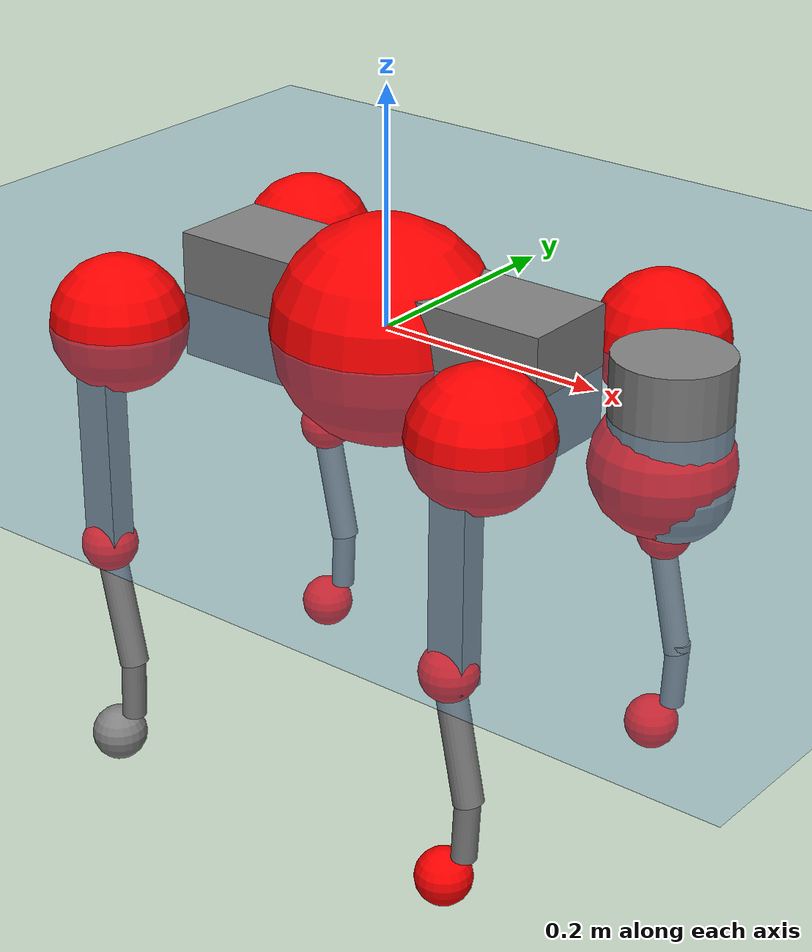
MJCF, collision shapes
<mujoco model="go2">
  <compiler angle="radian" assetdir="assets" balanceinertia="true" inertiafromgeom="false"/>

  <option timestep="0.005" density="1.2" viscosity="2e-05"/>

  <size nkey="1"/>

  <visual>
    <quality shadowsize="8192"/>
    <map shadowclip="0.5"/>
  </visual>

  <default>
    <default class="/">
      <geom contype="0" conaffinity="0" group="1" solref="-1000 -80"/>
      <site size="0.01 0.005 0.005" group="5"/>
      <general forcelimited="true" biastype="affine" gainprm="20" biasprm="0 -20 -0.5"/>
      <default class="go2">
        <joint armature="0.01" damping="0.01" frictionloss="0.2"/>
        <geom condim="1" margin="0.001"/>
        <default class="visual">
          <geom type="mesh" group="2"/>
        </default>
        <default class="collision">
          <geom group="3"/>
          <default class="foot">
            <geom size="0.022 0 0" condim="6" priority="1" friction="0.8 0.02 0.01" solimp="0.015 1 0.022"/>
          </default>
        </default>
        <default class="reward_collision_sphere">
          <geom group="5" rgba="1 0 0 1"/>
        </default>
      </default>
    </default>
  </default>

  <asset>
    <texture type="skybox" colorspace="auto" name="//unnamed_texture_0" builtin="gradient" rgb1="0.95 0.95 0.95" rgb2="0.95 0.95 0.95" width="100" height="600"/>
    <texture type="2d" colorspace="auto" name="texplane" builtin="checker" rgb1="0.345 0.575 0.748" rgb2="0.345 0.575 0.748" markrgb="1 1 1" width="512" height="512"/>
    <material name="MatPlane" class="/" texture="texplane" texuniform="true" texrepeat="2 2" specular="0.9"/>
    <material name="metal" class="/" rgba="0.9 0.95 0.95 1"/>
    <material name="black" class="/" rgba="0 0 0 1"/>
    <material name="white" class="/"/>
    <material name="gray" class="/" rgba="0.671705 0.692426 0.77427 1"/>
    <mesh name="base_0" class="/" file="base_0.obj"/>
    <mesh name="base_1" class="/" file="base_1.obj"/>
    <mesh name="base_2" class="/" file="base_2.obj"/>
    <mesh name="base_3" class="/" file="base_3.obj"/>
    <mesh name="base_4" class="/" file="base_4.obj"/>
    <mesh name="hip_0" class="/" file="hip_0.obj"/>
    <mesh name="hip_1" class="/" file="hip_1.obj"/>
    <mesh name="thigh_0" class="/" file="thigh_0.obj"/>
    <mesh name="thigh_1" class="/" file="thigh_1.obj"/>
    <mesh name="thigh_mirror_0" class="/" file="thigh_mirror_0.obj"/>
    <mesh name="thigh_mirror_1" class="/" file="thigh_mirror_1.obj"/>
    <mesh name="calf_0" class="/" file="calf_0.obj"/>
    <mesh name="calf_1" class="/" file="calf_1.obj"/>
    <mesh name="calf_mirror_0" class="/" file="calf_mirror_0.obj"/>
    <mesh name="calf_mirror_1" class="/" file="calf_mirror_1.obj"/>
    <mesh name="foot" class="/" file="foot.obj"/>
  </asset>

  <worldbody>
    <geom name="floor" class="/" size="100 100 0.125" type="plane" group="0" material="MatPlane"/>
    <light name="toplight_shadow" class="/" pos="0 0 5" dir="0.0990148 0.0990148 -0.990148" type="directional" ambient="0.04 0.04 0.04" diffuse="0.55 0.55 0.55" specular="0.12 0.12 0.12"/>
    <light name="toplight_fill" class="/" pos="0 0 5" dir="0.0990148 0.0990148 -0.990148" type="directional" castshadow="false" ambient="0.04 0.04 0.04" diffuse="0.3 0.3 0.3" specular="0.08 0.08 0.08"/>
    <body name="trunk" childclass="go2" pos="-0.000528228 -0.00029306 -0.00268144" quat="0.999999 0.000869258 0.00103298 6.28542e-05">
      <inertial pos="0.0188961 0.00250937 -0.00484762" quat="-0.0115705 0.714079 0.00582972 0.699946" mass="5.96854" diaginertia="0.0832895 0.117972 0.0132508"/>
      <joint name="//unnamed_joint_0" type="free" armature="0" damping="0" frictionloss="0"/>
      <geom name="//unnamed_geom_1" class="visual" material="black" mesh="base_0"/>
      <geom name="//unnamed_geom_2" class="visual" material="black" mesh="base_1"/>
      <geom name="//unnamed_geom_3" class="visual" material="black" mesh="base_2"/>
      <geom name="//unnamed_geom_4" class="visual" material="white" mesh="base_3"/>
      <geom name="//unnamed_geom_5" class="visual" material="gray" mesh="base_4"/>
      <geom name="trunk_1" class="collision" size="0.178701 0.044414 0.0541518" type="box"/>
      <geom name="trunk_2" class="collision" size="0.0475016 0.0427514" pos="0.269029 0 0.00877822" type="cylinder"/>
      <geom name="trunk_3" class="collision" size="0.0446515" pos="0.276581 0 -0.0526693"/>
      <geom name="//unnamed_geom_9" class="reward_collision_sphere" size="0.0950032"/>
      <geom name="//unnamed_geom_10" class="reward_collision_sphere" size="0.0570019" pos="0.26431 0 -0.039502"/>
      <site name="imu" pos="-0.0292261 0.00591375 0.0256808" size="0.00950032"/>
      <camera name="track" pos="0 -2.05662 0" quat="0.707107 0.707107 0 0" mode="trackcom"/>
      <camera name="ego_camera" pos="0.294516 0 0.039502" quat="-0.5 -0.5 0.5 0.5"/>
      <body name="FL_hip" pos="0.183016 0.0489811 0.00118567" quat="1 -7.6671e-07 -2.37645e-05 -9.38839e-05">
        <inertial pos="-0.00764274 0.00257218 -0.00243405" quat="0.507896 0.497388 0.497852 0.49678" mass="0.571819" diaginertia="0.000670573 0.000683592 0.000246999"/>
        <joint name="FL_hip_joint" pos="0 0 0" axis="0.999973 -0.00577783 -0.00450893" range="-1.04409 1.06655" armature="0.0095016" damping="0" frictionloss="0.197695"/>
        <geom name="//unnamed_geom_11" class="visual" material="metal" mesh="hip_0"/>
        <geom name="//unnamed_geom_12" class="visual" material="gray" mesh="hip_1"/>
        <geom name="//unnamed_geom_13" class="collision" size="0.0437015 0.0190006" pos="0 0.082265 0" quat="0.707107 0.707107 0 0" type="cylinder"/>
        <geom name="//unnamed_geom_14" class="reward_collision_sphere" size="0.0570019" pos="0 0.0719819 0"/>
        <body name="FL_thigh" pos="-0.00328506 0.0985813 0.00225735" quat="1 -1.73787e-05 5.10409e-06 -1.23531e-05">
          <inertial pos="-0.00360897 -0.022907 -0.0293028" quat="0.830166 0.0864023 -0.0169349 0.550519" mass="0.942927" diaginertia="0.00425756 0.00649072 0.000429865"/>
          <joint name="FL_thigh_joint" pos="0 0 0" axis="0.00153798 0.999995 -0.0026259" stiffness="0.00903381" range="-1.58783 3.49" armature="0.00862909" damping="0.0161055" frictionloss="0.190051"/>
          <geom name="//unnamed_geom_15" class="visual" material="metal" mesh="thigh_0"/>
          <geom name="//unnamed_geom_16" class="visual" material="gray" mesh="thigh_1"/>
          <geom name="//unnamed_geom_17" class="collision" size="0.101178 0.0116379 0.0161505" pos="0 0 -0.093488" quat="0.707107 0 0.707107 0" type="box"/>
          <body name="FL_calf" pos="0.000231286 0.000269957 -0.1875" quat="1 -8.58391e-05 -7.31235e-05 0.000114378">
            <inertial pos="0.00344281 -0.00328245 -0.124063" quat="0.710806 0.00275295 -0.00227734 0.703379" mass="0.205265" diaginertia="0.00107175 0.00166779 2.75932e-05"/>
            <joint name="FL_calf_joint" pos="0 0 0" axis="-0.00771909 0.999957 -0.00508978" stiffness="0.000592062" range="-2.77471 -0.81049" armature="0.00987439" damping="0.00468646" frictionloss="0.215254"/>
            <geom name="//unnamed_geom_18" class="visual" material="gray" mesh="calf_0"/>
            <geom name="//unnamed_geom_19" class="visual" material="black" mesh="calf_1"/>
            <geom name="FL_calf0" class="collision" size="0.0114004 0.0570019" pos="0.0075517 0 -0.0526693" quat="0.994493 0 -0.104807 0" type="cylinder"/>
            <geom name="//unnamed_geom_21" class="collision" size="0.0104504 0.030876" pos="0.0188793 0 -0.129918" quat="0.999688 0 0.0249974 0" type="cylinder"/>
            <geom name="//unnamed_geom_22" class="visual" pos="0 0 -0.186976" quat="1 0 0 0" material="black" mesh="foot"/>
            <geom name="FL_foot" class="foot" size="0.0159187" pos="-0.00188793 0 -0.186976"/>
            <geom name="//unnamed_geom_24" class="reward_collision_sphere" size="0.0237508"/>
            <geom name="//unnamed_geom_25" class="reward_collision_sphere" size="0.0237508" pos="-0.00188793 0 -0.186976"/>
            <site name="FL_foot" class="foot" pos="-0.00188793 0 -0.186976" size="0.00950032"/>
          </body>
        </body>
      </body>
      <body name="FR_hip" pos="0.182905 -0.0473671 0.00129058" quat="0.999999 -0.000942928 0.000559584 0.000911512">
        <inertial pos="-0.00440781 -0.0016973 0.000493427" quat="0.494455 0.516722 0.493667 0.494778" mass="0.606664" diaginertia="0.000661142 0.000688389 0.000250505"/>
        <joint name="FR_hip_joint" pos="0 0 0" axis="0.999982 -0.00463934 0.00371231" range="-1.10461 1.03175" armature="0.00905818" damping="0.00107269" frictionloss="0.205282"/>
        <geom name="//unnamed_geom_26" class="visual" pos="0 1.31101e-09 5.6232e-08" quat="4.63268e-05 1 0 0" material="metal" mesh="hip_0"/>
        <geom name="//unnamed_geom_27" class="visual" pos="0 2.12531e-09 -1.39083e-07" quat="4.63268e-05 1 0 0" material="gray" mesh="hip_1"/>
        <geom name="//unnamed_geom_28" class="collision" size="0.0437015 0.0190006" pos="0 -0.082265 0" quat="0.707107 0.707107 0 0" type="cylinder"/>
        <geom name="//unnamed_geom_29" class="reward_collision_sphere" size="0.0570019" pos="0 -0.0719819 0"/>
        <body name="FR_thigh" pos="-0.000143035 -0.099727 0.00140436" quat="1 0.000239749 2.59878e-05 0.000102505">
          <inertial pos="-0.00311116 0.0237683 -0.0280719" quat="0.55364 -0.0203843 0.0885824 0.827781" mass="1.01269" diaginertia="0.0044781 0.00649664 0.000457513"/>
          <joint name="FR_thigh_joint" pos="0 0 0" axis="0.000804484 -0.99995 -0.00993296" stiffness="0.0119706" range="-3.48711 1.54609" armature="0.00943472" damping="0.0045498" frictionloss="0.168038"/>
          <geom name="//unnamed_geom_30" class="visual" material="metal" mesh="thigh_mirror_0"/>
          <geom name="//unnamed_geom_31" class="visual" material="gray" mesh="thigh_mirror_1"/>
          <geom name="//unnamed_geom_32" class="collision" size="0.101178 0.0116379 0.0161505" pos="0 0 -0.093488" quat="0.707107 0 0.707107 0" type="box"/>
          <body name="FR_calf" pos="-0.00332437 -0.00125428 -0.184571" quat="1 -4.64991e-05 0.000358832 -0.000296332">
            <inertial pos="0.00715049 -0.00190857 -0.122001" quat="0.712631 -0.00291048 0.00120632 0.701532" mass="0.202105" diaginertia="0.00107447 0.00167937 2.62603e-05"/>
            <joint name="FR_calf_joint" pos="0 0 0" axis="0.000127569 -0.999999 0.00144278" stiffness="0.00446432" range="0.827585 2.72275" armature="0.0095108" damping="0" frictionloss="0.185073"/>
            <geom name="//unnamed_geom_33" class="visual" material="gray" mesh="calf_mirror_0"/>
            <geom name="//unnamed_geom_34" class="visual" material="black" mesh="calf_mirror_1"/>
            <geom name="FR_calf0" class="collision" size="0.0123504 0.0570019" pos="0.00943963 0 -0.0526693" quat="0.995004 0 -0.0998334 0" type="cylinder"/>
            <geom name="//unnamed_geom_36" class="collision" size="0.0104504 0.030876" pos="0.0188793 0 -0.129918" quat="0.999688 0 0.0249974 0" type="cylinder"/>
            <geom name="//unnamed_geom_37" class="visual" pos="0 0 -0.186976" quat="1 0 0 0" material="black" mesh="foot"/>
            <geom name="FR_foot" class="foot" size="0.02088" pos="-0.00188793 0 -0.186976"/>
            <geom name="//unnamed_geom_39" class="reward_collision_sphere" size="0.0237508"/>
            <geom name="//unnamed_geom_40" class="reward_collision_sphere" size="0.0237508" pos="-0.00188793 0 -0.186976"/>
            <site name="FR_foot" class="foot" pos="-0.00188793 0 -0.186976" size="0.00950032"/>
          </body>
        </body>
      </body>
      <body name="RL_hip" pos="-0.182125 0.046263 0.0012377" quat="1 -0.00030571 -3.12676e-05 -9.00741e-05">
        <inertial pos="0.00576311 -0.000227597 -0.00253611" quat="0.504921 0.499042 0.496481 0.499519" mass="0.575158" diaginertia="0.000649211 0.000674021 0.000239646"/>
        <joint name="RL_hip_joint" pos="0 0 0" axis="-0.999953 0.00495861 -0.00835703" range="-1.10168 1.09841" armature="0.0107034" damping="0.0138561" frictionloss="0.19225"/>
        <geom name="//unnamed_geom_41" class="visual" pos="-5.76193e-10 0 -1.12947e-07" quat="4.63268e-05 0 1 0" material="metal" mesh="hip_0"/>
        <geom name="//unnamed_geom_42" class="visual" pos="-9.34078e-10 0 -1.00168e-07" quat="4.63268e-05 0 1 0" material="gray" mesh="hip_1"/>
        <geom name="//unnamed_geom_43" class="collision" size="0.0437015 0.0190006" pos="0 0.082265 0" quat="0.707107 0.707107 0 0" type="cylinder"/>
        <geom name="//unnamed_geom_44" class="reward_collision_sphere" size="0.0570019" pos="0 0.0719819 0"/>
        <body name="RL_thigh" pos="-0.000507305 0.0956508 0.000390322" quat="0.999999 0.000351402 -0.000371068 -0.00091877">
          <inertial pos="-0.000901833 -0.0247487 -0.0314125" quat="0.82964 0.0845219 -0.0202197 0.551494" mass="1.01252" diaginertia="0.00475491 0.00686534 0.000483286"/>
          <joint name="RL_thigh_joint" pos="0 0 0" axis="-0.0179716 0.999817 0.00649637" stiffness="0.00812175" range="-0.555246 4.54627" armature="0.00989642" damping="0.003613" frictionloss="0.192532"/>
          <geom name="//unnamed_geom_45" class="visual" material="metal" mesh="thigh_0"/>
          <geom name="//unnamed_geom_46" class="visual" material="gray" mesh="thigh_1"/>
          <geom name="//unnamed_geom_47" class="collision" size="0.101178 0.0116379 0.0161505" pos="0 0 -0.093488" quat="0.707107 0 0.707107 0" type="box"/>
          <body name="RL_calf" pos="-0.00144314 -0.000405994 -0.189723" quat="0.999999 0.000270516 -0.000964423 -0.000355148">
            <inertial pos="0.00322182 0.00155977 -0.126586" quat="0.717447 0.0106616 -0.00551576 0.69651" mass="0.203076" diaginertia="0.00109015 0.00162718 2.70301e-05"/>
            <joint name="RL_calf_joint" pos="0 0 0" axis="0.00477015 0.999968 -0.0063876" stiffness="0.005986" range="-2.73765 -0.886867" armature="0.0108187" damping="0" frictionloss="0.191507"/>
            <geom name="//unnamed_geom_48" class="visual" material="gray" mesh="calf_0"/>
            <geom name="//unnamed_geom_49" class="visual" material="black" mesh="calf_1"/>
            <geom name="RL_calf0" class="collision" size="0.0123504 0.0570019" pos="0.00943963 0 -0.0526693" quat="0.995004 0 -0.0998334 0" type="cylinder"/>
            <geom name="//unnamed_geom_51" class="collision" size="0.0104504 0.030876" pos="0.0188793 0 -0.129918" quat="0.999688 0 0.0249974 0" type="cylinder"/>
            <geom name="//unnamed_geom_52" class="visual" pos="0 0 -0.186976" quat="1 0 0 0" material="black" mesh="foot"/>
            <geom name="RL_foot" class="foot" size="0.0194441" pos="-0.00188793 0 -0.186976"/>
            <geom name="//unnamed_geom_54" class="reward_collision_sphere" size="0.0237508"/>
            <geom name="//unnamed_geom_55" class="reward_collision_sphere" size="0.0237508" pos="-0.00188793 0 -0.186976"/>
            <site name="RL_foot" class="foot" pos="-0.00188793 0 -0.186976" size="0.00950032"/>
          </body>
        </body>
      </body>
      <body name="RR_hip" pos="-0.179757 -0.0486454 -0.00158688" quat="1 -3.29563e-05 -0.000223819 -0.000298632">
        <inertial pos="0.00264031 -0.00325614 -0.00057592" quat="0.490016 0.496368 0.508003 0.505406" mass="0.58195" diaginertia="0.000707962 0.000712228 0.000261198"/>
        <joint name="RR_hip_joint" pos="0 0 0" axis="-0.99991 0.00167711 -0.0132775" stiffness="0.00229324" range="-1.05268 1.04791" armature="0.00953565" damping="0.00920878" frictionloss="0.214549"/>
        <geom name="//unnamed_geom_56" class="visual" pos="5.79113e-10 1.31101e-09 -1.69179e-07" quat="2.14617e-09 4.63268e-05 4.63268e-05 -1" material="metal" mesh="hip_0"/>
        <geom name="//unnamed_geom_57" class="visual" pos="9.26855e-10 2.12531e-09 3.89152e-08" quat="2.14617e-09 4.63268e-05 4.63268e-05 -1" material="gray" mesh="hip_1"/>
        <geom name="//unnamed_geom_58" class="collision" size="0.0437015 0.0190006" pos="0 -0.082265 0" quat="0.707107 0.707107 0 0" type="cylinder"/>
        <geom name="//unnamed_geom_59" class="reward_collision_sphere" size="0.0570019" pos="0 -0.0719819 0"/>
        <body name="RR_thigh" pos="0.00159883 -0.0977632 -0.00212489" quat="1 0.000322911 -0.000131644 0.000532001">
          <inertial pos="-0.00158268 0.0228459 -0.030469" quat="0.555063 -0.0271531 0.0860544 0.826899" mass="0.964886" diaginertia="0.00464834 0.00678228 0.000456416"/>
          <joint name="RR_thigh_joint" pos="0 0 0" axis="-0.00632348 -0.999947 -0.00807404" range="-4.54425 0.479185" armature="0.009314" damping="0.00823891" frictionloss="0.199474"/>
          <geom name="//unnamed_geom_60" class="visual" material="metal" mesh="thigh_mirror_0"/>
          <geom name="//unnamed_geom_61" class="visual" material="gray" mesh="thigh_mirror_1"/>
          <geom name="//unnamed_geom_62" class="collision" size="0.101178 0.0116379 0.0161505" pos="0 0 -0.093488" quat="0.707107 0 0.707107 0" type="box"/>
          <body name="RR_calf" pos="-0.00250307 0.0019207 -0.189324" quat="0.999999 -0.000187502 -0.00114743 0.000431787">
            <inertial pos="0.00500956 0.000936987 -0.12455" quat="0.698672 -0.0161155 0.000348862 0.715261" mass="0.213118" diaginertia="0.00114785 0.00172791 2.72089e-05"/>
            <joint name="RR_calf_joint" pos="0 0 0" axis="-0.00893105 -0.999881 -0.0125968" range="0.887865 2.74846" armature="0.00942612" damping="0.0027575" frictionloss="0.199"/>
            <geom name="//unnamed_geom_63" class="visual" material="gray" mesh="calf_mirror_0"/>
            <geom name="//unnamed_geom_64" class="visual" material="black" mesh="calf_mirror_1"/>
            <geom name="RR_calf0" class="collision" size="0.0123504 0.0570019" pos="0.00943963 0 -0.0526693" quat="0.995004 0 -0.0998334 0" type="cylinder"/>
            <geom name="//unnamed_geom_66" class="collision" size="0.0104504 0.030876" pos="0.0188793 0 -0.129918" quat="0.999688 0 0.0249974 0" type="cylinder"/>
            <geom name="//unnamed_geom_67" class="visual" pos="0 0 -0.186976" quat="1 0 0 0" material="black" mesh="foot"/>
            <geom name="RR_foot" class="foot" size="0.0238168" pos="-0.00188793 0 -0.186976"/>
            <geom name="//unnamed_geom_69" class="reward_collision_sphere" size="0.0237508"/>
            <geom name="//unnamed_geom_70" class="reward_collision_sphere" size="0.0237508" pos="-0.00188793 0 -0.186976"/>
            <site name="RR_foot" class="foot" pos="-0.00188793 0 -0.186976" size="0.00950032"/>
          </body>
        </body>
      </body>
    </body>
  </worldbody>

  <contact>
    <pair class="/" geom1="floor" geom2="FL_foot" name="//unnamed_contact_0"/>
    <pair class="/" geom1="floor" geom2="FR_foot" name="//unnamed_contact_1"/>
    <pair class="/" geom1="floor" geom2="RL_foot" name="//unnamed_contact_2"/>
    <pair class="/" geom1="floor" geom2="RR_foot" name="//unnamed_contact_3"/>
  </contact>

  <actuator>
    <general name="FL_hip" class="/" joint="FL_hip_joint" forcerange="-22.0388 22.0388" gainprm="18.5612" biasprm="0 -18.5612 -0.486279"/>
    <general name="FL_thigh" class="/" joint="FL_thigh_joint" forcerange="-21.869 21.869" gainprm="18.5612" biasprm="0 -18.5612 -0.486279"/>
    <general name="FL_calf" class="/" joint="FL_calf_joint" forcerange="-44.895 44.895" gainprm="18.5612" biasprm="0 -18.5612 -0.486279"/>
    <general name="FR_hip" class="/" joint="FR_hip_joint" forcerange="-23.235 23.235" gainprm="18.5612" biasprm="0 -18.5612 -0.486279"/>
    <general name="FR_thigh" class="/" joint="FR_thigh_joint" forcerange="-23.3024 23.3024" gainprm="18.5612" biasprm="0 -18.5612 -0.486279"/>
    <general name="FR_calf" class="/" joint="FR_calf_joint" forcerange="-42.9877 42.9877" gainprm="18.5612" biasprm="0 -18.5612 -0.486279"/>
    <general name="RL_hip" class="/" joint="RL_hip_joint" forcerange="-22.3399 22.3399" gainprm="18.5612" biasprm="0 -18.5612 -0.486279"/>
    <general name="RL_thigh" class="/" joint="RL_thigh_joint" forcerange="-20.2832 20.2832" gainprm="18.5612" biasprm="0 -18.5612 -0.486279"/>
    <general name="RL_calf" class="/" joint="RL_calf_joint" forcerange="-47.5753 47.5753" gainprm="18.5612" biasprm="0 -18.5612 -0.486279"/>
    <general name="RR_hip" class="/" joint="RR_hip_joint" forcerange="-22.4734 22.4734" gainprm="18.5612" biasprm="0 -18.5612 -0.486279"/>
    <general name="RR_thigh" class="/" joint="RR_thigh_joint" forcerange="-22.9121 22.9121" gainprm="18.5612" biasprm="0 -18.5612 -0.486279"/>
    <general name="RR_calf" class="/" joint="RR_calf_joint" forcerange="-45.5889 45.5889" gainprm="18.5612" biasprm="0 -18.5612 -0.486279"/>
  </actuator>

  <sensor>
    <gyro site="imu" name="imu_angular_velocity"/>
    <velocimeter site="imu" name="imu_linear_velocity"/>
    <framelinvel objtype="site" objname="FL_foot" name="FL_foot_global_linear_velocity"/>
    <framelinvel objtype="site" objname="FR_foot" name="FR_foot_global_linear_velocity"/>
    <framelinvel objtype="site" objname="RL_foot" name="RL_foot_global_linear_velocity"/>
    <framelinvel objtype="site" objname="RR_foot" name="RR_foot_global_linear_velocity"/>
  </sensor>

  <keyframe>
    <key name="home" qpos="0 0 0.325 1 0 0 0 0.1 0.8 -1.5 -0.1 -0.8 1.5 -0.1 0.8 -1.5 0.1 -0.8 1.5"/>
  </keyframe>
</mujoco>
